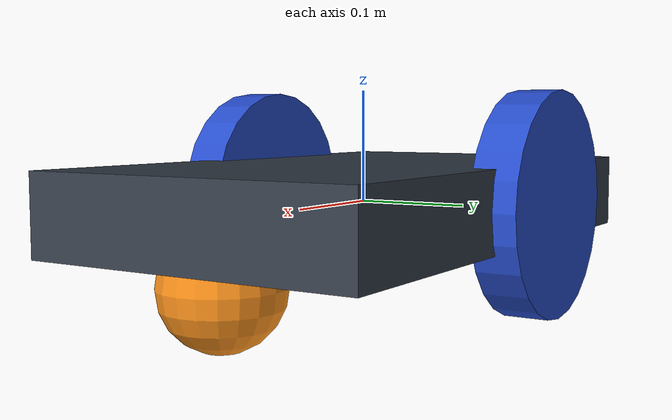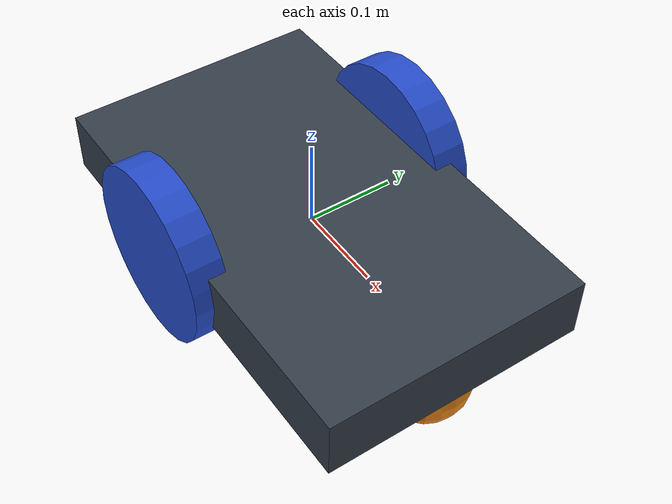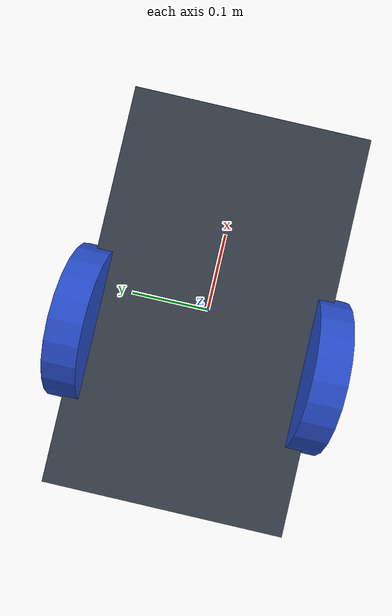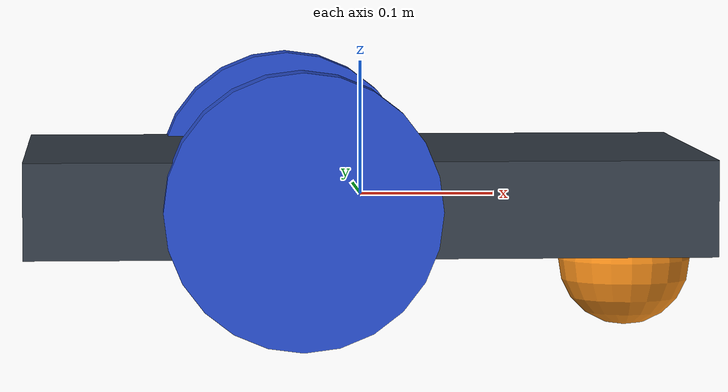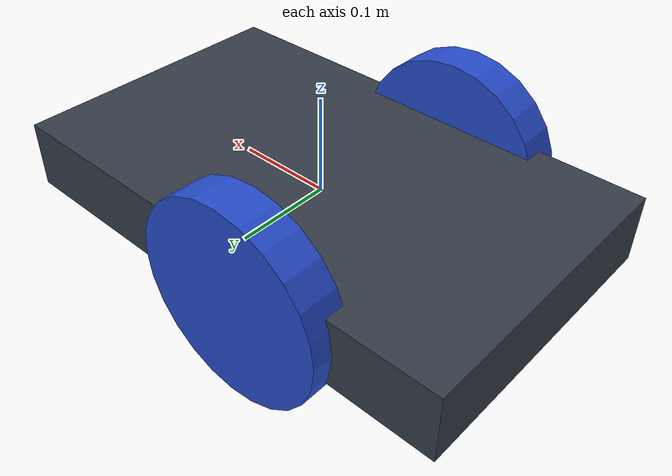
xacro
<?xml version="1.0" ?>

<robot name="m2wr" xmlns:xacro="https://www.ros.org/wiki/xacro" >

  <material name="black">
    <color rgba="0.0 0.0 0.0 1.0"/>
  </material>
  <material name="blue">
    <color rgba="0.203125 0.23828125 0.28515625 1.0"/>
  </material>
  <material name="green">
    <color rgba="0.0 0.8 0.0 1.0"/>
  </material>
  <material name="grey">
    <color rgba="0.2 0.2 0.2 1.0"/>
  </material>
  <material name="orange">
    <color rgba="1.0 0.423529411765 0.0392156862745 1.0"/>
  </material>
  <material name="brown">
    <color rgba="0.870588235294 0.811764705882 0.764705882353 1.0"/>
  </material>
  <material name="red">
    <color rgba="0.80078125 0.12890625 0.1328125 1.0"/>
  </material>
  <material name="white">
    <color rgba="1.0 1.0 1.0 1.0"/>
  </material>

  <gazebo reference="link_chassis">
    <material>Gazebo/Orange</material>
  </gazebo>
  <gazebo reference="link_left_wheel">
    <material>Gazebo/Blue</material>
  </gazebo>
  <gazebo reference="link_right_wheel">
    <material>Gazebo/Blue</material>
  </gazebo>

  <link name="link_chassis">
    <!-- pose and inertial -->
    <pose>0 0 0.1 0 0 0</pose>

    <inertial>
      <mass value="5"/>
      <origin rpy="0 0 0" xyz="0 0 0.1"/>
      <inertia ixx="0.0395416666667" ixy="0" ixz="0" iyy="0.106208333333" iyz="0" izz="0.106208333333"/>
    </inertial>

    <collision name="collision_chassis">
      <geometry>
        <box size="0.5 0.3 0.07"/>
      </geometry>
    </collision>

    <visual>
      <origin rpy="0 0 0" xyz="0 0 0"/>
      <geometry>
        <box size="0.5 0.3 0.07"/>
      </geometry>
      <material name="blue"/>
    </visual>

    <!-- caster front -->
    <collision name="caster_front_collision">
      <origin rpy=" 0 0 0" xyz="0.35 0 -0.05"/>
      <geometry>
        <sphere radius="0.05"/>
      </geometry>
      <surface>
        <friction>
          <ode>
            <mu>0</mu>
            <mu2>0</mu2>
            <slip1>1.0</slip1>
            <slip2>1.0</slip2>
          </ode>
        </friction>
      </surface>
    </collision>
    <visual name="caster_front_visual">
      <origin rpy=" 0 0 0" xyz="0.2 0 -0.05"/>
      <geometry>
        <sphere radius="0.05"/>
      </geometry>
    </visual>
    </link>

  <!-- Create wheel right -->

  <link name="link_right_wheel">
    <inertial>
      <mass value="0.2"/>
      <origin rpy="0 1.5707 1.5707" xyz="0 0 0"/>
      <inertia ixx="0.00052666666" ixy="0" ixz="0" iyy="0.00052666666" iyz="0" izz="0.001"/>
    </inertial>

    <collision name="link_right_wheel_collision">
      <origin rpy="0 1.5707 1.5707" xyz="0 0 0" />
      <geometry>
        <cylinder length="0.04" radius="0.1"/>
      </geometry>
    </collision>

    <visual name="link_right_wheel_visual">
      <origin rpy="0 1.5707 1.5707" xyz="0 0 0"/>
      <geometry>
        <cylinder length="0.04" radius="0.1"/>
      </geometry>
    </visual>

  </link>

  <!--   Joint for right wheel  -->
  <joint name="joint_right_wheel" type="continuous">
    <origin rpy="0 0 0" xyz="-0.05 0.15 0"/>
    <child link="link_right_wheel" />
    <parent link="link_chassis"/>
    <axis rpy="0 0 0" xyz="0 1 0"/>
    <limit effort="10000" velocity="1000"/>
    <joint_properties damping="1.0" friction="1.0" />
  </joint>

  <!-- Left Wheel link -->

  <link name="link_left_wheel">
    <inertial>
      <mass value="0.2"/>
      <origin rpy="0 1.5707 1.5707" xyz="0 0 0"/>
      <inertia ixx="0.00052666666" ixy="0" ixz="0" iyy="0.00052666666" iyz="0" izz="0.001"/>
    </inertial>

    <collision name="link_left_wheel_collision">
      <origin rpy="0 1.5707 1.5707" xyz="0 0 0" />
      <geometry>
        <cylinder length="0.04" radius="0.1"/>
      </geometry>
    </collision>

    <visual name="link_left_wheel_visual">
      <origin rpy="0 1.5707 1.5707" xyz="0 0 0"/>
      <geometry>
        <cylinder length="0.04" radius="0.1"/>
      </geometry>
    </visual>

  </link>

  <!--   Joint for right wheel  -->
  <joint name="joint_left_wheel" type="continuous">
    <origin rpy="0 0 0" xyz="-0.05 -0.15 0"/>
    <child link="link_left_wheel" />
    <parent link="link_chassis"/>
    <axis rpy="0 0 0" xyz="0 1 0"/>
    <limit effort="10000" velocity="1000"/>
    <joint_properties damping="1.0" friction="1.0" />
  </joint>

  <gazebo>
	  <plugin name="differential_drive_controller" filename="libgazebo_ros_diff_drive.so">

        <!-- Plugin update rate in Hz -->
        <updateRate>100</updateRate>

        <!-- Name of left joint, defaults to `left_joint` -->
        <leftJoint>joint_left_wheel</leftJoint>

        <!-- Name of right joint, defaults to `right_joint` -->
        <rightJoint>joint_right_wheel</rightJoint>

        <!-- The distance from the center of one wheel to the other, in meters, defaults to 0.34 m -->
        <wheelSeparation>0.525</wheelSeparation>

        <!-- Diameter of the wheels, in meters, defaults to 0.15 m -->
        <wheelDiameter>0.2</wheelDiameter>

        <!-- Wheel acceleration, in rad/s^2, defaults to 0.0 rad/s^2 -->
        <wheelAcceleration>1.0</wheelAcceleration>

        <!-- Maximum torque which the wheels can produce, in Nm, defaults to 5 Nm -->
        <wheelTorque>5</wheelTorque>

        <!-- Topic to receive geometry_msgs/Twist message commands, defaults to `cmd_vel` -->
        <commandTopic>cmd_vel</commandTopic>

        <!-- Topic to publish nav_msgs/Odometry messages, defaults to `odom` -->
        <odometryTopic>odom</odometryTopic>

        <!-- Odometry frame, defaults to `odom` -->
        <odometryFrame>odom</odometryFrame>

        <!-- Robot frame to calculate odometry from, defaults to `base_footprint` -->
        <robotBaseFrame>link_0</robotBaseFrame>

        <!-- Odometry source, 0 for ENCODER, 1 for WORLD, defaults to WORLD -->
        <odometrySource>1</odometrySource>

        <!-- Set to true to publish transforms for the wheel links, defaults to false -->
        <publishWheelTF>true</publishWheelTF>

        <!-- Set to true to publish transforms for the odometry, defaults to true -->
        <publishOdom>true</publishOdom>
       <!-- Set to true to publish sensor_msgs/JointState on /joint_states for the wheel joints, defaults to false -->
        <publishWheelJointState>true</publishWheelJointState>

        <!-- Set to true to swap right and left wheels, defaults to true -->
	<legacyMode>false</legacyMode>
	</plugin>
    </gazebo>
</robot>
